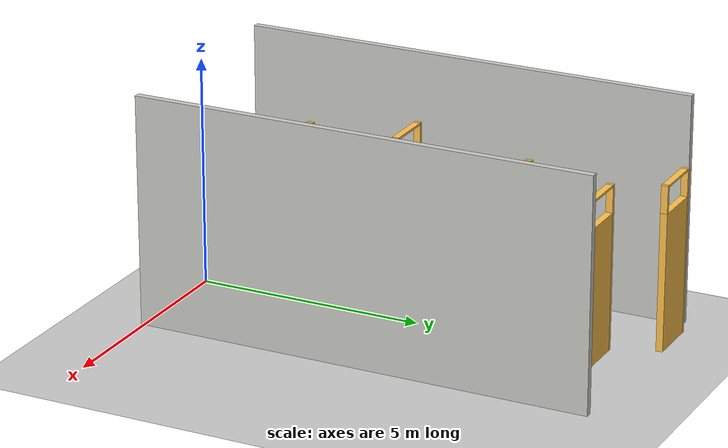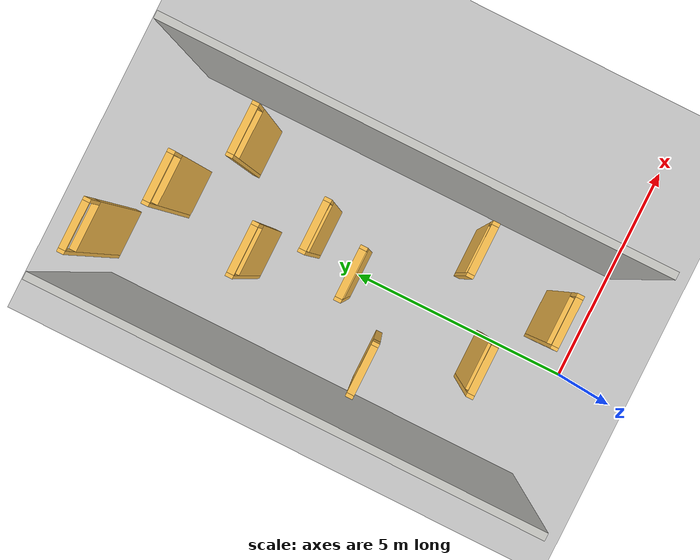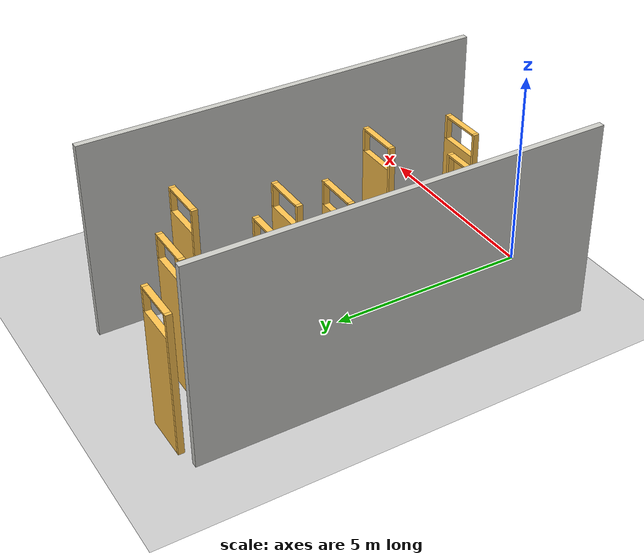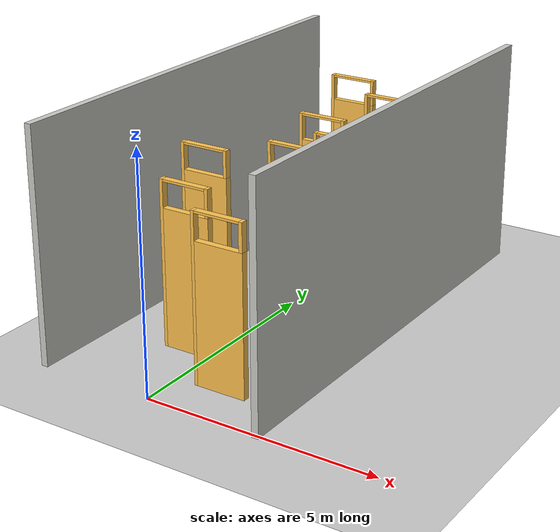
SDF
<sdf version="1.6">
 <world name="default">
  <light name="sun" type="directional">
   <pose>0 0 10 0 -0 0</pose>
   <diffuse>0.8 0.8 0.8 1</diffuse>
   <specular>0.2 0.2 0.2 1</specular>
   <attenuation>
    <range>1000</range>
    <constant>0.9</constant>
    <linear>0.01</linear>
    <quadratic>0.001</quadratic>
   </attenuation>
   <direction>-0.5 0.1 -0.9</direction>
  </light>
  <model name="ground_plane">
   <static>1</static>
   <link name="link">
    <collision name="collision">
     <geometry><plane><normal>0 0 1</normal><size>100 100</size></plane></geometry>
     <surface>
      <contact><collide_bitmask>65535</collide_bitmask></contact>
      <friction><ode><mu>100</mu><mu2>50</mu2></ode></friction>
     </surface>
    </collision>
    <visual name="visual">
     <cast_shadows>0</cast_shadows>
     <geometry><plane><normal>0 0 1</normal><size>100 100</size></plane></geometry>
     <material>
      <script><uri>file://media/materials/scripts/gazebo.material</uri><name>Gazebo/Grey</name></script>
     </material>
    </visual>
   </link>
  </model>
  <gravity>0 0 -9.8</gravity>
  <magnetic_field>6e-06 2.3e-05 -4.2e-05</magnetic_field>
  <atmosphere type="adiabatic"/>
  <physics name="default_physics" default="0" type="ode">
   <max_step_size>0.001</max_step_size>
   <real_time_factor>1</real_time_factor>
   <real_time_update_rate>1000</real_time_update_rate>
  </physics>
  <scene><ambient>0.4 0.4 0.4 1</ambient><background>0.7 0.7 0.7 1</background><shadows>1</shadows></scene>
  <audio><device>default</device></audio>
  <spherical_coordinates>
   <surface_model>EARTH_WGS84</surface_model>
   <latitude_deg>0</latitude_deg>
   <longitude_deg>0</longitude_deg>
   <elevation>0</elevation>
   <heading_deg>0</heading_deg>
  </spherical_coordinates>
  <model name="final">
   <pose>0 5 0 0 -0 0</pose>
   <link name="Wall_10">
    <pose>-0.5 -3 0 0 -0 0</pose>
    <visual name="Wall_10_Visual_0">
     <pose>-0.5375 0 1.8 0 -0 0</pose>
     <geometry><box><size>0.075 0.15 3.6</size></box></geometry>
     <material>
      <script><uri>file://media/materials/scripts/gazebo.material</uri><name>Gazebo/Grey</name></script>
      <ambient>1 0.764706 0.305882 1</ambient>
     </material>
     <meta><layer>0</layer></meta>
    </visual>
    <collision name="Wall_10_Collision_0">
     <geometry><box><size>0.075 0.15 3.6</size></box></geometry>
     <pose>-0.5375 0 1.8 0 -0 0</pose>
    </collision>
    <visual name="Wall_10_Visual_1">
     <pose>0.0375 0 1.5 0 -0 0</pose>
     <geometry><box><size>1.075 0.15 3</size></box></geometry>
     <material>
      <script><uri>file://media/materials/scripts/gazebo.material</uri><name>Gazebo/Grey</name></script>
      <ambient>1 0.764706 0.305882 1</ambient>
     </material>
     <meta><layer>0</layer></meta>
    </visual>
    <collision name="Wall_10_Collision_1">
     <geometry><box><size>1.075 0.15 3</size></box></geometry>
     <pose>0.0375 0 1.5 0 -0 0</pose>
    </collision>
    <visual name="Wall_10_Visual_2">
     <pose>0.5375 0 3.3 0 -0 0</pose>
     <geometry><box><size>0.075 0.15 0.6</size></box></geometry>
     <material>
      <script><uri>file://media/materials/scripts/gazebo.material</uri><name>Gazebo/Grey</name></script>
      <ambient>1 0.764706 0.305882 1</ambient>
     </material>
     <meta><layer>0</layer></meta>
    </visual>
    <collision name="Wall_10_Collision_2">
     <geometry><box><size>0.075 0.15 0.6</size></box></geometry>
     <pose>0.5375 0 3.3 0 -0 0</pose>
    </collision>
    <visual name="Wall_10_Visual_3">
     <pose>0 0 3.575 0 -0 0</pose>
     <geometry><box><size>1 0.15 0.05</size></box></geometry>
     <material>
      <script><uri>file://media/materials/scripts/gazebo.material</uri><name>Gazebo/Grey</name></script>
      <ambient>1 0.764706 0.305882 1</ambient>
     </material>
     <meta><layer>0</layer></meta>
    </visual>
    <collision name="Wall_10_Collision_3">
     <geometry><box><size>1 0.15 0.05</size></box></geometry>
     <pose>0 0 3.575 0 -0 0</pose>
    </collision>
   </link>
   <link name="Wall_12">
    <pose>1.5 -2 0 0 -0 0</pose>
    <visual name="Wall_12_Visual_0">
     <pose>-0.5375 0 1.8 0 -0 0</pose>
     <geometry><box><size>0.075 0.15 3.6</size></box></geometry>
     <material>
      <script><uri>file://media/materials/scripts/gazebo.material</uri><name>Gazebo/Grey</name></script>
      <ambient>1 0.764706 0.305882 1</ambient>
     </material>
     <meta><layer>0</layer></meta>
    </visual>
    <collision name="Wall_12_Collision_0">
     <geometry><box><size>0.075 0.15 3.6</size></box></geometry>
     <pose>-0.5375 0 1.8 0 -0 0</pose>
    </collision>
    <visual name="Wall_12_Visual_1">
     <pose>0.0375 0 1.5 0 -0 0</pose>
     <geometry><box><size>1.075 0.15 3</size></box></geometry>
     <material>
      <script><uri>file://media/materials/scripts/gazebo.material</uri><name>Gazebo/Grey</name></script>
      <ambient>1 0.764706 0.305882 1</ambient>
     </material>
     <meta><layer>0</layer></meta>
    </visual>
    <collision name="Wall_12_Collision_1">
     <geometry><box><size>1.075 0.15 3</size></box></geometry>
     <pose>0.0375 0 1.5 0 -0 0</pose>
    </collision>
    <visual name="Wall_12_Visual_2">
     <pose>0.5375 0 3.3 0 -0 0</pose>
     <geometry><box><size>0.075 0.15 0.6</size></box></geometry>
     <material>
      <script><uri>file://media/materials/scripts/gazebo.material</uri><name>Gazebo/Grey</name></script>
      <ambient>1 0.764706 0.305882 1</ambient>
     </material>
     <meta><layer>0</layer></meta>
    </visual>
    <collision name="Wall_12_Collision_2">
     <geometry><box><size>0.075 0.15 0.6</size></box></geometry>
     <pose>0.5375 0 3.3 0 -0 0</pose>
    </collision>
    <visual name="Wall_12_Visual_3">
     <pose>0 0 3.575 0 -0 0</pose>
     <geometry><box><size>1 0.15 0.05</size></box></geometry>
     <material>
      <script><uri>file://media/materials/scripts/gazebo.material</uri><name>Gazebo/Grey</name></script>
      <ambient>1 0.764706 0.305882 1</ambient>
     </material>
     <meta><layer>0</layer></meta>
    </visual>
    <collision name="Wall_12_Collision_3">
     <geometry><box><size>1 0.15 0.05</size></box></geometry>
     <pose>0 0 3.575 0 -0 0</pose>
    </collision>
   </link>
   <link name="Wall_14">
    <pose>-1.5 -1 0 0 -0 0</pose>
    <visual name="Wall_14_Visual_0">
     <pose>-0.5375 0 1.8 0 -0 0</pose>
     <geometry><box><size>0.075 0.15 3.6</size></box></geometry>
     <material>
      <script><uri>file://media/materials/scripts/gazebo.material</uri><name>Gazebo/Grey</name></script>
      <ambient>1 0.764706 0.305882 1</ambient>
     </material>
     <meta><layer>0</layer></meta>
    </visual>
    <collision name="Wall_14_Collision_0">
     <geometry><box><size>0.075 0.15 3.6</size></box></geometry>
     <pose>-0.5375 0 1.8 0 -0 0</pose>
    </collision>
    <visual name="Wall_14_Visual_1">
     <pose>0.0375 0 1.5 0 -0 0</pose>
     <geometry><box><size>1.075 0.15 3</size></box></geometry>
     <material>
      <script><uri>file://media/materials/scripts/gazebo.material</uri><name>Gazebo/Grey</name></script>
      <ambient>1 0.764706 0.305882 1</ambient>
     </material>
     <meta><layer>0</layer></meta>
    </visual>
    <collision name="Wall_14_Collision_1">
     <geometry><box><size>1.075 0.15 3</size></box></geometry>
     <pose>0.0375 0 1.5 0 -0 0</pose>
    </collision>
    <visual name="Wall_14_Visual_2">
     <pose>0.5375 0 3.3 0 -0 0</pose>
     <geometry><box><size>0.075 0.15 0.6</size></box></geometry>
     <material>
      <script><uri>file://media/materials/scripts/gazebo.material</uri><name>Gazebo/Grey</name></script>
      <ambient>1 0.764706 0.305882 1</ambient>
     </material>
     <meta><layer>0</layer></meta>
    </visual>
    <collision name="Wall_14_Collision_2">
     <geometry><box><size>0.075 0.15 0.6</size></box></geometry>
     <pose>0.5375 0 3.3 0 -0 0</pose>
    </collision>
    <visual name="Wall_14_Visual_3">
     <pose>0 0 3.575 0 -0 0</pose>
     <geometry><box><size>1 0.15 0.05</size></box></geometry>
     <material>
      <script><uri>file://media/materials/scripts/gazebo.material</uri><name>Gazebo/Grey</name></script>
      <ambient>1 0.764706 0.305882 1</ambient>
     </material>
     <meta><layer>0</layer></meta>
    </visual>
    <collision name="Wall_14_Collision_3">
     <geometry><box><size>1 0.15 0.05</size></box></geometry>
     <pose>0 0 3.575 0 -0 0</pose>
    </collision>
   </link>
   <link name="Wall_16">
    <visual name="Wall_16_Visual_0">
     <pose>-0.5375 0 1.8 0 -0 0</pose>
     <geometry><box><size>0.075 0.15 3.6</size></box></geometry>
     <material>
      <script><uri>file://media/materials/scripts/gazebo.material</uri><name>Gazebo/Grey</name></script>
      <ambient>1 0.764706 0.305882 1</ambient>
     </material>
     <meta><layer>0</layer></meta>
    </visual>
    <collision name="Wall_16_Collision_0">
     <geometry><box><size>0.075 0.15 3.6</size></box></geometry>
     <pose>-0.5375 0 1.8 0 -0 0</pose>
    </collision>
    <visual name="Wall_16_Visual_1">
     <pose>0.0375 0 1.5 0 -0 0</pose>
     <geometry><box><size>1.075 0.15 3</size></box></geometry>
     <material>
      <script><uri>file://media/materials/scripts/gazebo.material</uri><name>Gazebo/Grey</name></script>
      <ambient>1 0.764706 0.305882 1</ambient>
     </material>
     <meta><layer>0</layer></meta>
    </visual>
    <collision name="Wall_16_Collision_1">
     <geometry><box><size>1.075 0.15 3</size></box></geometry>
     <pose>0.0375 0 1.5 0 -0 0</pose>
    </collision>
    <visual name="Wall_16_Visual_2">
     <pose>0.5375 0 3.3 0 -0 0</pose>
     <geometry><box><size>0.075 0.15 0.6</size></box></geometry>
     <material>
      <script><uri>file://media/materials/scripts/gazebo.material</uri><name>Gazebo/Grey</name></script>
      <ambient>1 0.764706 0.305882 1</ambient>
     </material>
     <meta><layer>0</layer></meta>
    </visual>
    <collision name="Wall_16_Collision_2">
     <geometry><box><size>0.075 0.15 0.6</size></box></geometry>
     <pose>0.5375 0 3.3 0 -0 0</pose>
    </collision>
    <visual name="Wall_16_Visual_3">
     <pose>0 0 3.575 0 -0 0</pose>
     <geometry><box><size>1 0.15 0.05</size></box></geometry>
     <material>
      <script><uri>file://media/materials/scripts/gazebo.material</uri><name>Gazebo/Grey</name></script>
      <ambient>1 0.764706 0.305882 1</ambient>
     </material>
     <meta><layer>0</layer></meta>
    </visual>
    <collision name="Wall_16_Collision_3">
     <geometry><box><size>1 0.15 0.05</size></box></geometry>
     <pose>0 0 3.575 0 -0 0</pose>
    </collision>
   </link>
   <link name="Wall_18">
    <pose>0.5 1 0 0 -0 0</pose>
    <visual name="Wall_18_Visual_0">
     <pose>-0.5375 0 1.8 0 -0 0</pose>
     <geometry><box><size>0.075 0.15 3.6</size></box></geometry>
     <material>
      <script><uri>file://media/materials/scripts/gazebo.material</uri><name>Gazebo/Grey</name></script>
      <ambient>1 0.764706 0.305882 1</ambient>
     </material>
     <meta><layer>0</layer></meta>
    </visual>
    <collision name="Wall_18_Collision_0">
     <geometry><box><size>0.075 0.15 3.6</size></box></geometry>
     <pose>-0.5375 0 1.8 0 -0 0</pose>
    </collision>
    <visual name="Wall_18_Visual_1">
     <pose>0.0375 0 1.5 0 -0 0</pose>
     <geometry><box><size>1.075 0.15 3</size></box></geometry>
     <material>
      <script><uri>file://media/materials/scripts/gazebo.material</uri><name>Gazebo/Grey</name></script>
      <ambient>1 0.764706 0.305882 1</ambient>
     </material>
     <meta><layer>0</layer></meta>
    </visual>
    <collision name="Wall_18_Collision_1">
     <geometry><box><size>1.075 0.15 3</size></box></geometry>
     <pose>0.0375 0 1.5 0 -0 0</pose>
    </collision>
    <visual name="Wall_18_Visual_2">
     <pose>0.5375 0 3.3 0 -0 0</pose>
     <geometry><box><size>0.075 0.15 0.6</size></box></geometry>
     <material>
      <script><uri>file://media/materials/scripts/gazebo.material</uri><name>Gazebo/Grey</name></script>
      <ambient>1 0.764706 0.305882 1</ambient>
     </material>
     <meta><layer>0</layer></meta>
    </visual>
    <collision name="Wall_18_Collision_2">
     <geometry><box><size>0.075 0.15 0.6</size></box></geometry>
     <pose>0.5375 0 3.3 0 -0 0</pose>
    </collision>
    <visual name="Wall_18_Visual_3">
     <pose>0 0 3.575 0 -0 0</pose>
     <geometry><box><size>1 0.15 0.05</size></box></geometry>
     <material>
      <script><uri>file://media/materials/scripts/gazebo.material</uri><name>Gazebo/Grey</name></script>
      <ambient>1 0.764706 0.305882 1</ambient>
     </material>
     <meta><layer>0</layer></meta>
    </visual>
    <collision name="Wall_18_Collision_3">
     <geometry><box><size>1 0.15 0.05</size></box></geometry>
     <pose>0 0 3.575 0 -0 0</pose>
    </collision>
   </link>
   <link name="Wall_20">
    <pose>-0.5 2 0 0 -0 0</pose>
    <visual name="Wall_20_Visual_0">
     <pose>-0.5375 0 1.8 0 -0 0</pose>
     <geometry><box><size>0.075 0.15 3.6</size></box></geometry>
     <material>
      <script><uri>file://media/materials/scripts/gazebo.material</uri><name>Gazebo/Grey</name></script>
      <ambient>1 0.764706 0.305882 1</ambient>
     </material>
     <meta><layer>0</layer></meta>
    </visual>
    <collision name="Wall_20_Collision_0">
     <geometry><box><size>0.075 0.15 3.6</size></box></geometry>
     <pose>-0.5375 0 1.8 0 -0 0</pose>
    </collision>
    <visual name="Wall_20_Visual_1">
     <pose>0.0375 0 1.5 0 -0 0</pose>
     <geometry><box><size>1.075 0.15 3</size></box></geometry>
     <material>
      <script><uri>file://media/materials/scripts/gazebo.material</uri><name>Gazebo/Grey</name></script>
      <ambient>1 0.764706 0.305882 1</ambient>
     </material>
     <meta><layer>0</layer></meta>
    </visual>
    <collision name="Wall_20_Collision_1">
     <geometry><box><size>1.075 0.15 3</size></box></geometry>
     <pose>0.0375 0 1.5 0 -0 0</pose>
    </collision>
    <visual name="Wall_20_Visual_2">
     <pose>0.5375 0 3.3 0 -0 0</pose>
     <geometry><box><size>0.075 0.15 0.6</size></box></geometry>
     <material>
      <script><uri>file://media/materials/scripts/gazebo.material</uri><name>Gazebo/Grey</name></script>
      <ambient>1 0.764706 0.305882 1</ambient>
     </material>
     <meta><layer>0</layer></meta>
    </visual>
    <collision name="Wall_20_Collision_2">
     <geometry><box><size>0.075 0.15 0.6</size></box></geometry>
     <pose>0.5375 0 3.3 0 -0 0</pose>
    </collision>
    <visual name="Wall_20_Visual_3">
     <pose>-0 0 3.575 0 -0 0</pose>
     <geometry><box><size>1 0.15 0.05</size></box></geometry>
     <material>
      <script><uri>file://media/materials/scripts/gazebo.material</uri><name>Gazebo/Grey</name></script>
      <ambient>1 0.764706 0.305882 1</ambient>
     </material>
     <meta><layer>0</layer></meta>
    </visual>
    <collision name="Wall_20_Collision_3">
     <geometry><box><size>1 0.15 0.05</size></box></geometry>
     <pose>-0 0 3.575 0 -0 0</pose>
    </collision>
   </link>
   <link name="Wall_23">
    <pose>1.5 3 0 0 -0 0</pose>
    <visual name="Wall_23_Visual_0">
     <pose>-0.5375 0 1.8 0 -0 0</pose>
     <geometry><box><size>0.075 0.15 3.6</size></box></geometry>
     <material>
      <script><uri>file://media/materials/scripts/gazebo.material</uri><name>Gazebo/Grey</name></script>
      <ambient>1 0.764706 0.305882 1</ambient>
     </material>
     <meta><layer>0</layer></meta>
    </visual>
    <collision name="Wall_23_Collision_0">
     <geometry><box><size>0.075 0.15 3.6</size></box></geometry>
     <pose>-0.5375 0 1.8 0 -0 0</pose>
    </collision>
    <visual name="Wall_23_Visual_1">
     <pose>0.0375 0 1.5 0 -0 0</pose>
     <geometry><box><size>1.075 0.15 3</size></box></geometry>
     <material>
      <script><uri>file://media/materials/scripts/gazebo.material</uri><name>Gazebo/Grey</name></script>
      <ambient>1 0.764706 0.305882 1</ambient>
     </material>
     <meta><layer>0</layer></meta>
    </visual>
    <collision name="Wall_23_Collision_1">
     <geometry><box><size>1.075 0.15 3</size></box></geometry>
     <pose>0.0375 0 1.5 0 -0 0</pose>
    </collision>
    <visual name="Wall_23_Visual_2">
     <pose>0.5375 0 3.3 0 -0 0</pose>
     <geometry><box><size>0.075 0.15 0.6</size></box></geometry>
     <material>
      <script><uri>file://media/materials/scripts/gazebo.material</uri><name>Gazebo/Grey</name></script>
      <ambient>1 0.764706 0.305882 1</ambient>
     </material>
     <meta><layer>0</layer></meta>
    </visual>
    <collision name="Wall_23_Collision_2">
     <geometry><box><size>0.075 0.15 0.6</size></box></geometry>
     <pose>0.5375 0 3.3 0 -0 0</pose>
    </collision>
    <visual name="Wall_23_Visual_3">
     <pose>0 0 3.575 0 -0 0</pose>
     <geometry><box><size>1 0.15 0.05</size></box></geometry>
     <material>
      <script><uri>file://media/materials/scripts/gazebo.material</uri><name>Gazebo/Grey</name></script>
      <ambient>1 0.764706 0.305882 1</ambient>
     </material>
     <meta><layer>0</layer></meta>
    </visual>
    <collision name="Wall_23_Collision_3">
     <geometry><box><size>1 0.15 0.05</size></box></geometry>
     <pose>0 0 3.575 0 -0 0</pose>
    </collision>
   </link>
   <link name="Wall_25">
    <pose>0 4 0 0 -0 0</pose>
    <visual name="Wall_25_Visual_0">
     <pose>-0.5375 0 1.8 0 -0 0</pose>
     <geometry><box><size>0.075 0.15 3.6</size></box></geometry>
     <material>
      <script><uri>file://media/materials/scripts/gazebo.material</uri><name>Gazebo/Grey</name></script>
      <ambient>1 0.764706 0.305882 1</ambient>
     </material>
     <meta><layer>0</layer></meta>
    </visual>
    <collision name="Wall_25_Collision_0">
     <geometry><box><size>0.075 0.15 3.6</size></box></geometry>
     <pose>-0.5375 0 1.8 0 -0 0</pose>
    </collision>
    <visual name="Wall_25_Visual_1">
     <pose>0.0375 0 1.5 0 -0 0</pose>
     <geometry><box><size>1.075 0.15 3</size></box></geometry>
     <material>
      <script><uri>file://media/materials/scripts/gazebo.material</uri><name>Gazebo/Grey</name></script>
      <ambient>1 0.764706 0.305882 1</ambient>
     </material>
     <meta><layer>0</layer></meta>
    </visual>
    <collision name="Wall_25_Collision_1">
     <geometry><box><size>1.075 0.15 3</size></box></geometry>
     <pose>0.0375 0 1.5 0 -0 0</pose>
    </collision>
    <visual name="Wall_25_Visual_2">
     <pose>0.5375 0 3.3 0 -0 0</pose>
     <geometry><box><size>0.075 0.15 0.6</size></box></geometry>
     <material>
      <script><uri>file://media/materials/scripts/gazebo.material</uri><name>Gazebo/Grey</name></script>
      <ambient>1 0.764706 0.305882 1</ambient>
     </material>
     <meta><layer>0</layer></meta>
    </visual>
    <collision name="Wall_25_Collision_2">
     <geometry><box><size>0.075 0.15 0.6</size></box></geometry>
     <pose>0.5375 0 3.3 0 -0 0</pose>
    </collision>
    <visual name="Wall_25_Visual_3">
     <pose>0 0 3.575 0 -0 0</pose>
     <geometry><box><size>1 0.15 0.05</size></box></geometry>
     <material>
      <script><uri>file://media/materials/scripts/gazebo.material</uri><name>Gazebo/Grey</name></script>
      <ambient>1 0.764706 0.305882 1</ambient>
     </material>
     <meta><layer>0</layer></meta>
    </visual>
    <collision name="Wall_25_Collision_3">
     <geometry><box><size>1 0.15 0.05</size></box></geometry>
     <pose>0 0 3.575 0 -0 0</pose>
    </collision>
   </link>
   <link name="Wall_28">
    <pose>-1.5 5 0 0 -0 0</pose>
    <visual name="Wall_28_Visual_0">
     <pose>-0.5375 0 1.8 0 -0 0</pose>
     <geometry><box><size>0.075 0.15 3.6</size></box></geometry>
     <material>
      <script><uri>file://media/materials/scripts/gazebo.material</uri><name>Gazebo/Grey</name></script>
      <ambient>1 0.764706 0.305882 1</ambient>
     </material>
     <meta><layer>0</layer></meta>
    </visual>
    <collision name="Wall_28_Collision_0">
     <geometry><box><size>0.075 0.15 3.6</size></box></geometry>
     <pose>-0.5375 0 1.8 0 -0 0</pose>
    </collision>
    <visual name="Wall_28_Visual_1">
     <pose>0.0375 0 1.5 0 -0 0</pose>
     <geometry><box><size>1.075 0.15 3</size></box></geometry>
     <material>
      <script><uri>file://media/materials/scripts/gazebo.material</uri><name>Gazebo/Grey</name></script>
      <ambient>1 0.764706 0.305882 1</ambient>
     </material>
     <meta><layer>0</layer></meta>
    </visual>
    <collision name="Wall_28_Collision_1">
     <geometry><box><size>1.075 0.15 3</size></box></geometry>
     <pose>0.0375 0 1.5 0 -0 0</pose>
    </collision>
    <visual name="Wall_28_Visual_2">
     <pose>0.5375 0 3.3 0 -0 0</pose>
     <geometry><box><size>0.075 0.15 0.6</size></box></geometry>
     <material>
      <script><uri>file://media/materials/scripts/gazebo.material</uri><name>Gazebo/Grey</name></script>
      <ambient>1 0.764706 0.305882 1</ambient>
     </material>
     <meta><layer>0</layer></meta>
    </visual>
    <collision name="Wall_28_Collision_2">
     <geometry><box><size>0.075 0.15 0.6</size></box></geometry>
     <pose>0.5375 0 3.3 0 -0 0</pose>
    </collision>
    <visual name="Wall_28_Visual_3">
     <pose>0 0 3.575 0 -0 0</pose>
     <geometry><box><size>1 0.15 0.05</size></box></geometry>
     <material>
      <script><uri>file://media/materials/scripts/gazebo.material</uri><name>Gazebo/Grey</name></script>
      <ambient>1 0.764706 0.305882 1</ambient>
     </material>
     <meta><layer>0</layer></meta>
    </visual>
    <collision name="Wall_28_Collision_3">
     <geometry><box><size>1 0.15 0.05</size></box></geometry>
     <pose>0 0 3.575 0 -0 0</pose>
    </collision>
   </link>
   <link name="Wall_4">
    <collision name="Wall_4_Collision">
     <geometry><box><size>10 0.15 5</size></box></geometry>
     <pose>0 0 2.5 0 -0 0</pose>
    </collision>
    <visual name="Wall_4_Visual">
     <pose>0 0 2.5 0 -0 0</pose>
     <geometry><box><size>10 0.15 5</size></box></geometry>
     <material>
      <script><uri>file://media/materials/scripts/gazebo.material</uri><name>Gazebo/CeilingTiled</name></script>
      <ambient>1 1 1 1</ambient>
     </material>
     <meta><layer>0</layer></meta>
    </visual>
    <pose>-2.5 -0.075 0 0 -0 1.5708</pose>
   </link>
   <link name="Wall_6">
    <collision name="Wall_6_Collision">
     <geometry><box><size>10 0.15 5</size></box></geometry>
     <pose>0 0 2.5 0 -0 0</pose>
    </collision>
    <visual name="Wall_6_Visual">
     <pose>0 0 2.5 0 -0 0</pose>
     <geometry><box><size>10 0.15 5</size></box></geometry>
     <material>
      <script><uri>file://media/materials/scripts/gazebo.material</uri><name>Gazebo/CeilingTiled</name></script>
      <ambient>1 1 1 1</ambient>
     </material>
     <meta><layer>0</layer></meta>
    </visual>
    <pose>2.5 -0.075 0 0 -0 1.5708</pose>
   </link>
   <link name="Wall_8">
    <pose>1 -4 0 0 -0 0</pose>
    <visual name="Wall_8_Visual_0">
     <pose>-0.53995 0 1.8 0 -0 0</pose>
     <geometry><box><size>0.0701 0.15 3.6</size></box></geometry>
     <material>
      <script><uri>file://media/materials/scripts/gazebo.material</uri><name>Gazebo/Grey</name></script>
      <ambient>1 0.764706 0.305882 1</ambient>
     </material>
     <meta><layer>0</layer></meta>
    </visual>
    <collision name="Wall_8_Collision_0">
     <geometry><box><size>0.0701 0.15 3.6</size></box></geometry>
     <pose>-0.53995 0 1.8 0 -0 0</pose>
    </collision>
    <visual name="Wall_8_Visual_1">
     <pose>0.03505 0 1.5 0 -0 0</pose>
     <geometry><box><size>1.0799 0.15 3</size></box></geometry>
     <material>
      <script><uri>file://media/materials/scripts/gazebo.material</uri><name>Gazebo/Grey</name></script>
      <ambient>1 0.764706 0.305882 1</ambient>
     </material>
     <meta><layer>0</layer></meta>
    </visual>
    <collision name="Wall_8_Collision_1">
     <geometry><box><size>1.0799 0.15 3</size></box></geometry>
     <pose>0.03505 0 1.5 0 -0 0</pose>
    </collision>
    <visual name="Wall_8_Visual_2">
     <pose>0.53505 0 3.3 0 -0 0</pose>
     <geometry><box><size>0.0799 0.15 0.6</size></box></geometry>
     <material>
      <script><uri>file://media/materials/scripts/gazebo.material</uri><name>Gazebo/Grey</name></script>
      <ambient>1 0.764706 0.305882 1</ambient>
     </material>
     <meta><layer>0</layer></meta>
    </visual>
    <collision name="Wall_8_Collision_2">
     <geometry><box><size>0.0799 0.15 0.6</size></box></geometry>
     <pose>0.53505 0 3.3 0 -0 0</pose>
    </collision>
    <visual name="Wall_8_Visual_3">
     <pose>-0.0049 0 3.575 0 -0 0</pose>
     <geometry><box><size>1 0.15 0.05</size></box></geometry>
     <material>
      <script><uri>file://media/materials/scripts/gazebo.material</uri><name>Gazebo/Grey</name></script>
      <ambient>1 0.764706 0.305882 1</ambient>
     </material>
     <meta><layer>0</layer></meta>
    </visual>
    <collision name="Wall_8_Collision_3">
     <geometry><box><size>1 0.15 0.05</size></box></geometry>
     <pose>-0.0049 0 3.575 0 -0 0</pose>
    </collision>
   </link>
   <static>1</static>
  </model>
 </world>
</sdf>
